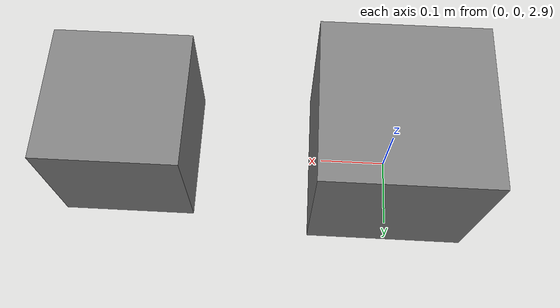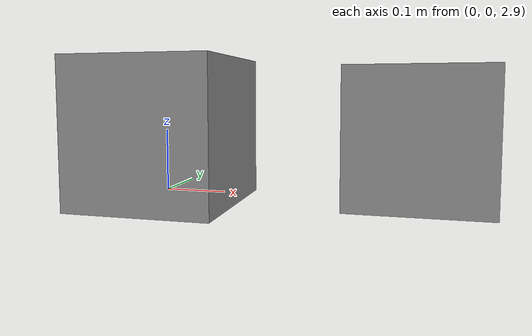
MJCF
<mujoco model="genesis_mass_replay">
  <compiler angle="radian"/>
  <option timestep="0.006666666666666667"/>
  <worldbody>
    <geom name="floor" type="plane" size="20 20 0.1"/>
    <body name="base" pos="0 0 3">
      <freejoint/>
      <inertial pos="0 0 0" mass="5" diaginertia="0.048 0.048 0.048"/>
      <geom name="base_geom" type="box" size="0.12 0.12 0.12"/>
      <body name="arm" pos="0.3 0 0">
        <joint name="hinge" type="hinge" axis="0 1 0" range="-2 2"/>
        <inertial pos="0.1 0 0" mass="2" diaginertia="0.013 0.013 0.013"/>
        <geom name="arm_geom" type="box" pos="0.1 0 0" size="0.1 0.1 0.1"/>
      </body>
    </body>
  </worldbody>
  <actuator>
    <position name="hinge_drive" joint="hinge" kp="20" kv="2"
              ctrllimited="true" ctrlrange="-1 1" forcelimited="true" forcerange="-100 100"/>
  </actuator>
  <keyframe><key name="init" qpos="0 0 3 1 0 0 0 0"/></keyframe>
</mujoco>
